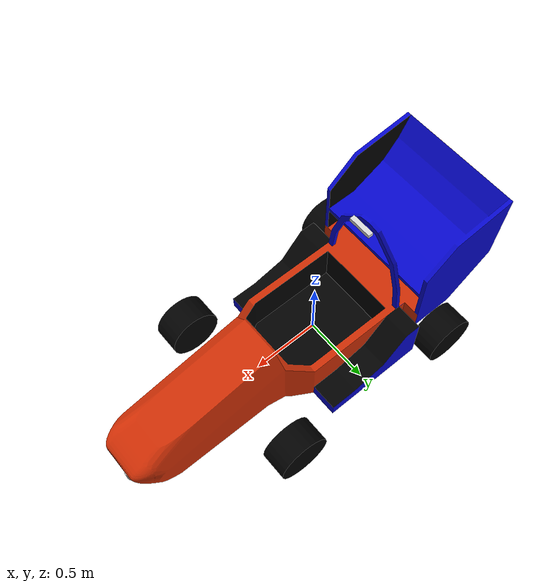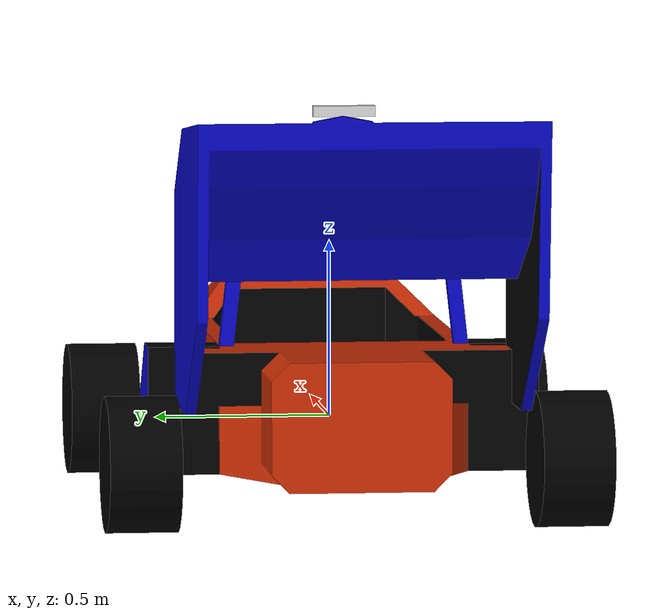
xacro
<?xml version="1.0"?>
<robot name="qev3" xmlns:xacro="http://ros.org/wiki/xacro">
    <!--                         Properties (in METERS)                      -->
    <xacro:property name="chassis_width" value="0.64" />
    <xacro:property name="chassis_length" value="2.51" />
    <xacro:property name="chassis_height" value="0.55" />

    <xacro:property name="wheel_diameter" value="0.381" />
    <xacro:property name="wheel_thickness" value="0.2" />

    <xacro:property name="velodyne_diameter" value="0.1" />
    <xacro:property name="velodyne_height" value="0.0869" />

    <xacro:property name="zed2i_width" value="0.17525" />
    <xacro:property name="zed2i_length" value="0.0373" />
    <xacro:property name="zed2i_height" value="0.03025" />

    <!--                             Materials                               -->
    <material name="wheel">
        <color rgba="0 0 0 1"/>
    </material>

    <material name="sensor">
        <color rgba="0.85 0.85 0.85 1"/>
    </material>

    <!--                           Links & Joints                            -->
    <!-- Base link (chassis) -->
    <link name="car">
        <visual>
            <origin xyz="0 0 0" rpy="0 0 0" />
            <geometry>
                <mesh filename="file://$(find vehicle_urdf)/meshes/lando.dae"/>
            </geometry>
            <material name="chassis"/>
        </visual>
    </link>

    <!-- Wheels -->
    <xacro:macro name="wheel" params="name loc">
        <!-- side is 1, -1 for left, right -->
        <!-- direction is 1, -1 for front, back -->
        <link name="${name}_wheel">
            <visual>
                <origin xyz="0 0 0" rpy="${pi/2} 0 0" />
                <geometry>
                    <cylinder radius="${wheel_diameter/2}" length="${wheel_thickness}"/>
                </geometry>
                <material name="wheel"/>
            </visual>
        </link>
        <joint name="${name}_wheel_joint" type="fixed">
            <axis xyz="0 1 0" rpy="0 0 0" />
            <parent link="car"/>
            <child link="${name}_wheel"/>
            <origin xyz="${loc}" rpy="0 0 0"/>
        </joint>
    </xacro:macro>

    <xacro:wheel name="fl" loc="0.67 -0.6 -0.05"/>
    <xacro:wheel name="fr" loc="0.67 0.6 -0.05"/>
    <xacro:wheel name="rl" loc="-0.68 -0.6 -0.05"/>
    <xacro:wheel name="rr" loc="-0.68 0.6 -0.05"/>

    <!-- Velodyne -->
    <link name="velodyne">
        <visual>
            <origin xyz="0 0 0" rpy="0 0 0" />
            <geometry>
                <cylinder radius="${velodyne_diameter/2}" length="${velodyne_height}"/>
            </geometry>
            <material name="sensor"/>
        </visual>
    </link>
    <joint name="velodyne_joint" type="fixed">
        <parent link="car"/>
        <child link="velodyne"/>
        <origin xyz="1.590 0 -0.15" rpy="0 0 0"/>
    </joint>

    <!-- ZED2i -->
    <link name="zed2i">
        <visual>
            <origin xyz="0 0 0" rpy="0 0 0" />
            <geometry>
                <box size="${zed2i_length} ${zed2i_width} ${zed2i_height}"/>
            </geometry>
            <material name="sensor"/>
        </visual>
    </link>
    <joint name="zed2i_joint" type="fixed">
        <parent link="car"/>
        <child link="zed2i"/>
        <origin xyz="-0.370 0 0.900" rpy="0 0 0"/>
    </joint>
</robot>
